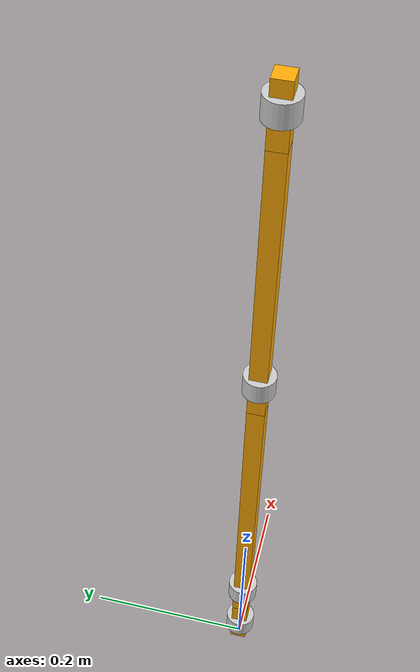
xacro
<?xml version="1.0"?>
<robot name="arm" xmlns:xacro="http://www.ros.org/wiki/xacro">
    <xacro:property name="PI" value="3.14159265359"/>
    <gazebo>
        <plugin name="gazebo_ros_control" filename="libgazebo_ros_control.so"/>
    </gazebo>
    <!-- Geometrical properties -->
    <xacro:property name="link_side" value="0.02"/>
    <xacro:property name="joint_radius" value="0.018"/>
    <xacro:property name="joint_length" value="0.025"/>
    <xacro:property name="toe_length" value="0.03"/>
    <xacro:property name="foot_length" value="0.04"/>
    <xacro:property name="thigh_length" value="0.04"/>
    <xacro:property name="calf_length" value="0.36"/>
    <xacro:property name="big_arm_length" value="0.04"/>
    <xacro:property name="arm_length" value="0.30"/>
    <xacro:property name="hand_length" value="0.04"/>
    <xacro:property name="finger_length" value="0.03"/>

    <!-- Materials -->
    <material name="orange">
        <color rgba="1.00 0.67 0.02 1.00"/>
    </material>

    <material name="gray">
        <color rgba="0.80 0.80 0.80 1.00"/>
    </material>

    <!-- Generates a box visual/collision/inertial -->
    <xacro:macro name="prism_vci" params="side length  mass:=1 *origin">

        <xacro:macro name="prism_geometry">
            <xacro:insert_block name="origin"/>
            <geometry>
                <box size="${side} ${side} ${length}"/>
            </geometry>
        </xacro:macro>

        <visual>
            <xacro:prism_geometry/>
            <material name="orange"/>
        </visual>

        <collision>
            <xacro:prism_geometry/>
        </collision>

        <inertial>
            <xacro:insert_block name="origin"/>
            <mass value="${mass}"/>
            <inertia ixx="${(mass/12)*(side*side+length*length)}"
                     iyy="${(mass/12)*(side*side+length*length)}"
                     izz="${(mass/6)*(side*side)}"
                     ixy="0" ixz="0" iyz="0"/>
        </inertial>

    </xacro:macro>

    <!-- Generates a cylinder visual/collision -->
    <xacro:macro name="cylinder_vc" params="radius length *origin">

        <xacro:macro name="cylinder_geometry">
            <xacro:insert_block name="origin"/>
            <geometry>
                <cylinder length="${length}" radius="${radius}"/>
            </geometry>
        </xacro:macro>

        <visual>
            <xacro:cylinder_geometry/>
            <material name="gray"/>
        </visual>

        <collision>
            <xacro:cylinder_geometry/>
        </collision>

    </xacro:macro>

    <!-- Generates child joint of parent -->
    <xacro:macro name="arm_joint" params="child parent type:='revolute' roll:=0 pitch:=0 yaw:=0 dist:=0 axis">

        <joint name="${parent}_${child}_joint" type="${type}">
            <origin xyz="0 0 ${dist}" rpy="${roll} ${pitch} ${yaw}"/>
            <parent link="${parent}"/>
            <child link="${child}"/>
            <axis xyz="${axis}"/>
            <limit effort="40.0"
                   velocity="1.0"
                   lower="${-PI}"
                   upper="${PI}"/>
        </joint>

        <!-- Required for ROS control -->
        <transmission name="${parent}_${child}_transmission">
            <type>transmission_interface/SimpleTransmission</type>
            <joint name="${parent}_${child}_joint">
                <hardwareInterface>hardware_interface/EffortJointInterface</hardwareInterface>
            </joint>
            <actuator name="${parent}_${child}_actuator"/>
        </transmission>

        <link name="${parent}">

            <xacro:prism_vci length="${dist}" side="${link_side}">
                <origin xyz="0 0 ${dist/2}" rpy="0 0 0"/>
            </xacro:prism_vci>

            <xacro:cylinder_vc radius="${joint_radius}" length="${joint_length}">

                <xacro:if value="${axis=='0 0 1'}">
                    <origin xyz="0 0 ${dist}" rpy="0 0 0"/>
                </xacro:if>

                <xacro:if value="${axis=='1 0 0'}">
                    <origin xyz="0 0 ${dist}" rpy="0 ${PI/2} 0"/>
                </xacro:if>

                <xacro:if value="${axis=='0 1 0'}">
                    <origin xyz="0 0 ${dist}" rpy="${PI/2} 0 0"/>
                </xacro:if>

            </xacro:cylinder_vc>

        </link>

        <gazebo reference="${parent}">
            <material>Gazebo/Orange</material>
        </gazebo>

    </xacro:macro>

    <link name="world"/>
    <joint name="world_foot_joint" type="fixed">
        <parent link="world"/>
        <child link="toe"/>
    </joint>

    <xacro:arm_joint parent="toe" child="foot" axis="0 0 1" dist="${toe_length}"/>
    <xacro:arm_joint parent="foot" child="thigh" axis="1 0 0" dist="${foot_length}"/>
    <xacro:arm_joint parent="thigh" child="calf" axis="0 0 1" dist="${thigh_length}"/>
    <xacro:arm_joint parent="calf" child="big_arm" axis="1 0 0" dist="${calf_length}"/>
    <xacro:arm_joint parent="big_arm" child="arm" axis="0 0 1" dist="${big_arm_length}"/>
    <xacro:arm_joint parent="arm" child="hand" axis="1 0 0" dist="${arm_length}"/>
    <xacro:arm_joint parent="hand" child="finger" axis="0 0 1" dist="${hand_length}"/>
    <!-- End effector -->
    <link name="finger">
        <xacro:prism_vci length="${finger_length}" side="${link_side}">
            <origin xyz="0 0 ${finger_length/2}" rpy="0 0 0"/>
        </xacro:prism_vci>
    </link>

    <gazebo reference="finger">
        <material>Gazebo/Red</material>
        <sensor type="camera" name="camera1">
            <update_rate>30.0</update_rate>
            <camera name="head">
                <horizontal_fov>1.3962634</horizontal_fov>
                <image>
                    <width>1280</width>
                    <height>720</height>
                    <format>R8G8B8</format>
                </image>
                <clip>
                    <near>0.02</near>
                    <far>300</far>
                </clip>
                <noise>
                    <type>gaussian</type>
                    <mean>0.0</mean>
                    <stddev>0.007</stddev>
                </noise>
            </camera>
            <plugin name="camera_controller" filename="libgazebo_ros_camera.so">
                <alwaysOn>true</alwaysOn>
                <updateRate>0.0</updateRate>
                <cameraName>kv/camera1</cameraName>
                <imageTopicName>image_raw</imageTopicName>
                <cameraInfoTopicName>camera_info</cameraInfoTopicName>
                <frameName>camera_link</frameName>
                <hackBaseline>0.07</hackBaseline>
                <distortionK1>0.0</distortionK1>
                <distortionK2>0.0</distortionK2>
                <distortionK3>0.0</distortionK3>
                <distortionT1>0.0</distortionT1>
                <distortionT2>0.0</distortionT2>
            </plugin>
        </sensor>
    </gazebo>

</robot>
